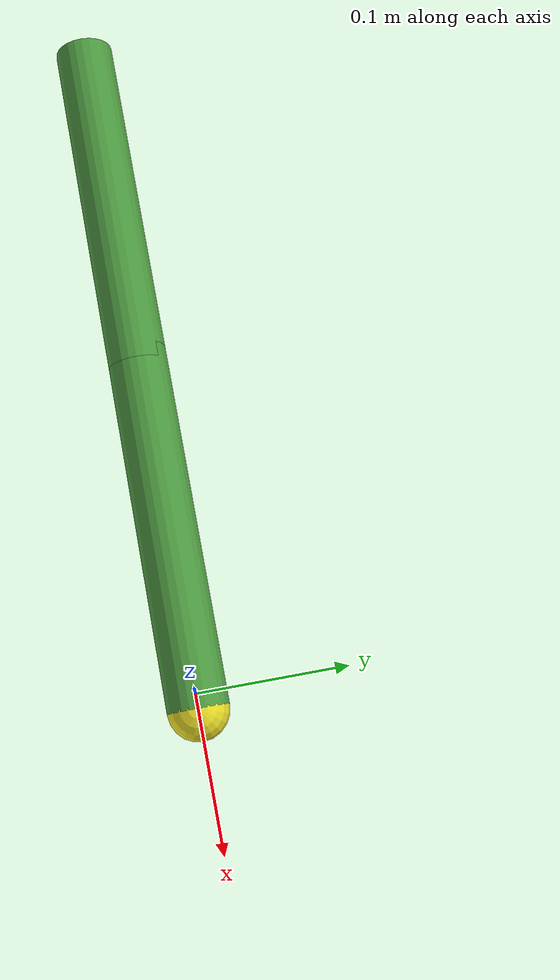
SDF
<sdf version='1.6'>
    <model name='link_bot'>
        <link name='tail'>
            <pose frame=''>0 0 0 0 -0 0</pose>
            <inertial>
                <pose frame=''>0.11 0 0 0 -0 0</pose>
                <mass>0.25</mass>
                <inertia>
                    <ixx>6.66667e-05</ixx>
                    <ixy>0</ixy>
                    <ixz>0</ixz>
                    <iyy>0.00113542</iyy>
                    <iyz>0</iyz>
                    <izz>0.00113542</izz>
                </inertia>
            </inertial>
            <collision name='tail_collision'>
                <pose frame=''>0.11 0 0 3.14159 -1.57079 3.14159</pose>
                <geometry>
                    <box>
                        <size>0.04 0.04 0.22</size>
                    </box>
                </geometry>
                <surface>
                    <friction>
                        <ode>
                            <mu>0.10</mu>
                            <mu2>0.10</mu2>
                        </ode>
                    </friction>
                </surface>
                <max_contacts>20</max_contacts>
            </collision>
            <visual name='tail_visual'>
                <cast_shadows>0</cast_shadows>
                <pose frame=''>0.11 0 0 3.14159 -1.57079 3.14159</pose>
                <geometry>
                    <cylinder>
                        <length>0.24</length>
                        <radius>0.02</radius>
                    </cylinder>
                </geometry>
                <material>
                    <script>
                        <name>Gazebo/BigGrass</name>
                        <uri>file://media/materials/scripts/gazebo.material</uri>
                    </script>
                </material>
            </visual>
            <self_collide>1</self_collide>
        </link>
        <link name='mid'>
            <pose frame=''>0.23 0 0 0 -0 0</pose>
            <inertial>
                <pose frame=''>0.11 0 0 0 -0 0</pose>
                <mass>0.25</mass>
                <inertia>
                    <ixx>6.66667e-05</ixx>
                    <ixy>0</ixy>
                    <ixz>0</ixz>
                    <iyy>0.00113542</iyy>
                    <iyz>0</iyz>
                    <izz>0.00113542</izz>
                </inertia>
            </inertial>
            <collision name='mid_collision'>
                <pose frame=''>0.11 0 0 3.14159 -1.57079 3.14159</pose>
                <geometry>
                    <box>
                        <size>0.04 0.04 0.22</size>
                    </box>
                </geometry>
                <surface>
                    <friction>
                        <ode>
                            <mu>0.10</mu>
                            <mu2>0.10</mu2>
                        </ode>
                    </friction>
                </surface>
                <max_contacts>20</max_contacts>
            </collision>
            <visual name='mid_visual'>
                <cast_shadows>0</cast_shadows>
                <pose frame=''>0.11 0 0 3.14159 -1.57079 3.14159</pose>
                <geometry>
                    <cylinder>
                        <length>0.24</length>
                        <radius>0.02</radius>
                    </cylinder>
                </geometry>
                <material>
                    <script>
                        <uri>file://media/materials/scripts/gazebo.material</uri>
                        <name>Gazebo/BigRedGrass</name>
                    </script>
                </material>
            </visual>
            <self_collide>1</self_collide>
            <sensor name='mid_contact' type='contact'>
                <contact>
                    <collision>mid_collision</collision>
                    <topic>__default_topic__</topic>
                </contact>
            </sensor>
        </link>
        <joint name='joint_1' type='revolute'>
            <child>mid</child>
            <parent>tail</parent>
            <axis>
                <xyz>0 0 1</xyz>
                <limit>
                    <lower>-3</lower>
                    <upper>3</upper>
                    <effort>10</effort>
                    <velocity>5</velocity>
                </limit>
                <dynamics>
                    <damping>0</damping>
                    <friction>0</friction>
                </dynamics>
                <use_parent_model_frame>1</use_parent_model_frame>
            </axis>
        </joint>
        <link name='head'>
            <pose frame=''>0.46 0 0 0 -0 0</pose>
            <inertial>
                <pose frame=''>0 0 0 0 -0 0</pose>
                <mass>0.1</mass>
                <inertia>
                    <ixx>0.0001</ixx>
                    <ixy>0</ixy>
                    <ixz>0</ixz>
                    <iyy>0.0001</iyy>
                    <iyz>0</iyz>
                    <izz>0.001</izz>
                </inertia>
            </inertial>
            <collision name='head_collision'>
                <pose frame=''>0 0 0 0 -0 0</pose>
                <geometry>
                    <sphere>
                        <radius>0.02</radius>
                    </sphere>
                </geometry>
                <surface>
                    <friction>
                        <ode>
                            <mu>0.10</mu>
                            <mu2>0.10</mu2>
                        </ode>
                    </friction>
                </surface>
                <max_contacts>20</max_contacts>
            </collision>
            <visual name='head_visual'>
                <cast_shadows>0</cast_shadows>
                <pose frame=''>0 0 0 0 -0 0</pose>
                <geometry>
                    <sphere>
                        <radius>0.02</radius>
                    </sphere>
                </geometry>
                <material>
                    <script>
                        <name>Gazebo/Yellow</name>
                        <uri>file://media/materials/scripts/gazebo.material</uri>
                    </script>
                </material>
            </visual>
            <self_collide>1</self_collide>
            <sensor name='head_contact' type='contact'>
                <contact>
                    <collision>head_collision</collision>
                    <topic>__default_topic__</topic>
                </contact>
            </sensor>
        </link>
        <joint name='head_joint' type='revolute'>
            <child>head</child>
            <parent>mid</parent>
            <axis>
                <xyz>0 0 1</xyz>
                <limit>
                    <lower>-3</lower>
                    <upper>3</upper>
                    <effort>10</effort>
                    <velocity>5</velocity>
                </limit>
                <dynamics>
                    <damping>0</damping>
                    <friction>0</friction>
                </dynamics>
                <use_parent_model_frame>1</use_parent_model_frame>
            </axis>
            <physics>
                <ode>
                    <limit>
                        <cfm>0</cfm>
                        <erp>0.2</erp>
                    </limit>
                </ode>
            </physics>
        </joint>
        <plugin name='multi_link_bot_model_plugin' filename='libmulti_link_bot_model_plugin.so'>
            <kP_pos>50</kP_pos>
            <kI_pos>0.001</kI_pos>
            <kD_pos>0.0</kD_pos>
            <kP_vel>20.0</kP_vel>
            <kI_vel>0.0</kI_vel>
            <kD_vel>0.0</kD_vel>
            <max_force>1.0</max_force>
            <max_vel>0.15</max_vel>
            <max_vel_acc>0.01</max_vel_acc>
            <gripper1_link>head</gripper1_link>
        </plugin>
        <pose frame=''>-0.45 0 0.01 0 -0 0</pose>
    </model>
</sdf>
